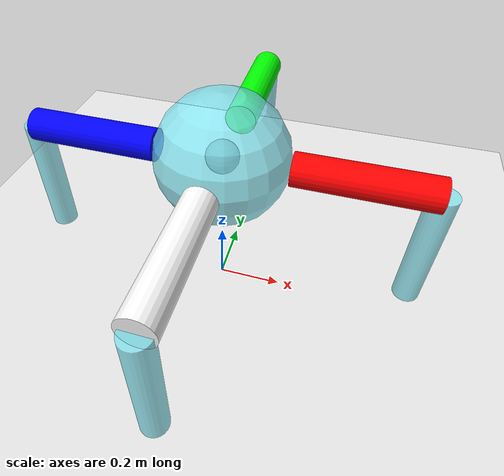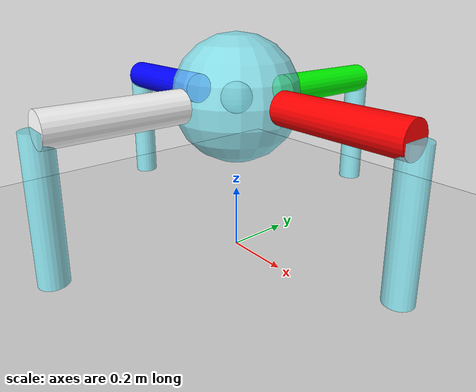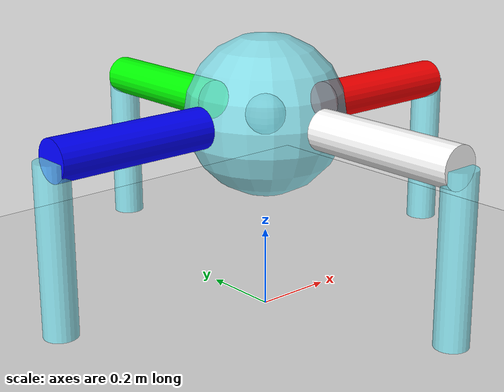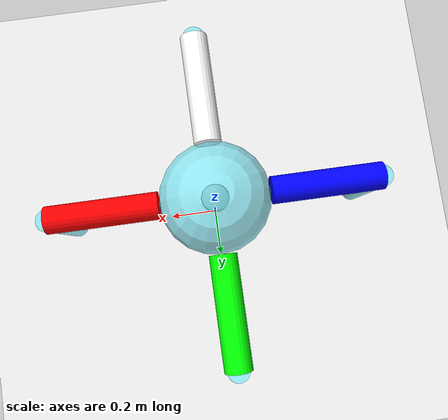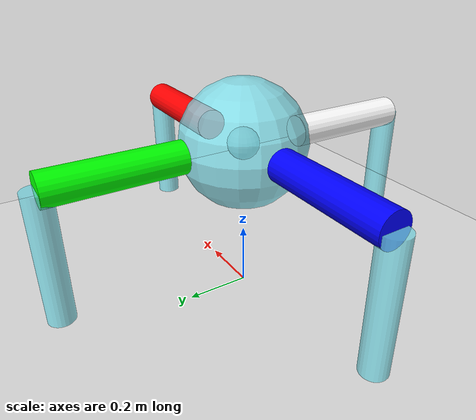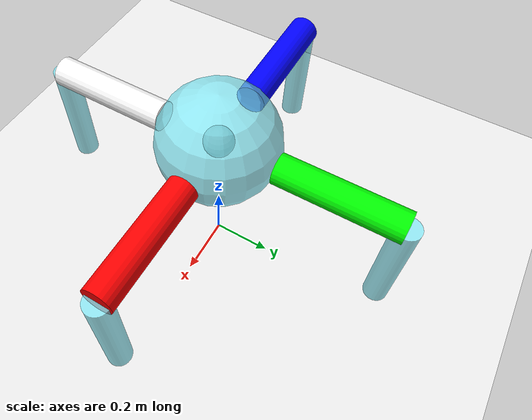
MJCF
<mujoco>
    <option gravity="0 0 -9.81"/>
    <worldbody>
        <light diffuse=".5 .5 .5" pos="0 0 3" dir="0 0 -1"/>
        <geom type="plane" size="5 5 0.1" rgba=".9 .9 .9 1"/>
        <body name="main" pos="0 0 0.5">
            <joint type="free"/>
            <geom type="sphere" size="0.2 0.2" rgba="0.486 0.917 0.97 0.75"/>  <!-- Changed shape to cylinder for spider body -->
            <site name="marker" pos="0 0 0" size="0.05"/>

            <!-- Define four spider legs -->
            <!-- red -->
            <body name="red-leg-upper" pos="0.4 0 0">
                <joint name="red-upper-joint" pos="-0.2 0 0" type="hinge" axis="0 1 0" range="-15 0"/>
                <geom type="cylinder" size="0.05 0.2" rgba="1 0 0 1" euler="0 90 0"/>
                <body name="red-leg-lower" pos="0.2 0 -0.2">
                    <joint name="red-lower-joint" pos="0 0 0.2" type="hinge" axis="0 1 0" range="0 45"/>
                    <geom type="cylinder" size="0.04 0.2" pos="0 0 0" rgba="0.486 0.917 0.97 0.75"/>
                </body>
            </body>

            <!-- green -->
            <body name="green-leg-upper" pos="0 0.4 0">
                <joint name="green-upper-joint" pos="0 -0.2 0" type="hinge" axis="1 0 0" range="0 15"/>
                <geom type="cylinder" size="0.05 0.2" rgba="0 1 0 1" euler="90 0 0"/>
                <body name="green-leg-lower" pos="0 0.2 -0.2">
                    <joint name="green-lower-joint" pos="0 0 0.2" type="hinge" axis="1 0 0" range="-45 0"/>
                    <geom type="cylinder" size="0.04 0.2" pos="0 0 0" rgba="0.486 0.917 0.97 0.75"/>
                </body>
            </body>

            <!-- blue -->
            <body name="blue-leg-upper" pos="-0.4 0 0">
                <joint name="blue-upper-joint" pos="0.2 0 0" type="hinge" axis="0 1 0" range="0 15"/>
                <geom type="cylinder" size="0.05 0.2" rgba="0 0 1 1" euler="0 -90 0"/>
                <body name="blue-leg-lower" pos="-0.2 0 -0.2">
                    <joint name="blue-lower-joint" pos="0 0 0.2" type="hinge" axis="0 1 0" range="-45 0"/>
                    <geom type="cylinder" size="0.04 0.2" pos="0 0 0" rgba="0.486 0.917 0.97 0.75"/>
                </body>
            </body>

            <!-- grey -->
            <body name="grey-leg-upper" pos="0 -0.4 0">
                <joint name="grey-upper-joint" pos="0 0.2 0" type="hinge" axis="1 0 0" range="-15 0"/>
                <geom type="cylinder" size="0.05 0.2" rgba="1 1 1 1" euler="-90 0 0"/>
                <body name="grey-leg-lower" pos="0 -0.2 -0.2">
                    <joint name="grey-lower-joint" pos="0 0 0.2" type="hinge" axis="1 0 0" range="-0 45"/>
                    <geom type="cylinder" size="0.04 0.2" pos="0 0 0" rgba="0.486 0.917 0.97 0.75"/>
                </body>
            </body>
        </body>
    </worldbody>
    <sensor>
        <framepos objtype="site" objname="marker"/>
    </sensor>
    <actuator>
        <motor name="red-upper-motor" joint="red-upper-joint" />
        <motor name="red-lower-motor" joint="red-lower-joint" />
        <motor name="green-upper-motor" joint="green-upper-joint" />
        <motor name="green-lower-motor" joint="green-lower-joint" />
        <motor name="blue-upper-motor" joint="blue-upper-joint" />
        <motor name="blue-lower-motor" joint="blue-lower-joint" />
        <motor name="grey-upper-motor" joint="grey-upper-joint" />
        <motor name="grey-lower-motor" joint="grey-lower-joint" />
    </actuator>
</mujoco>
